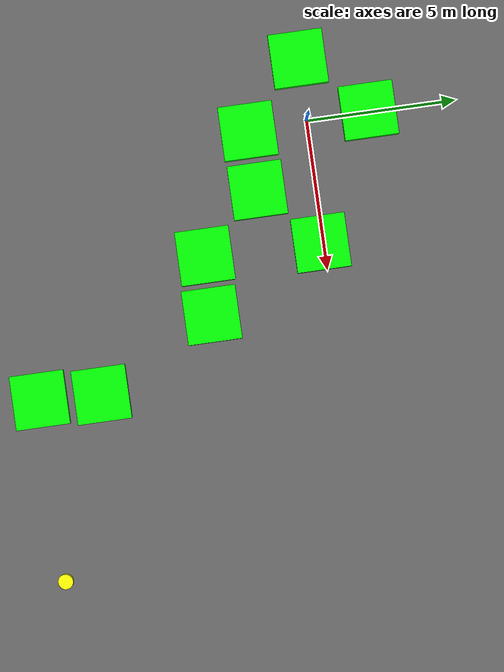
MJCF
<mujoco model="randommix_032_lvl0_standard_obs9_d3long_seed1085">
    <compiler angle="degree" coordinate="local" inertiafromgeom="true"/>
    <option integrator="RK4" timestep="0.01"/>

    <asset>
        <texture builtin="gradient" height="100" rgb1="0.6 0.8 1" rgb2="0 0 0" type="skybox" width="100"/>
        <texture name="floor_texture" type="2d" builtin="checker" width="100" height="100" rgb1="0 0 0" rgb2="0.8 0.8 0.8"/>
        <material name="MatPlane" reflectance="0.5" shininess="1" specular="1" texrepeat="10 10" texture="floor_texture"/>
    </asset>

    <!-- Excluding the contact between the agent and the goal, and the agent and the floor -->
    <contact>
        <exclude body1="agent" body2="goal"/>
        <exclude body1 = "agent" body2 = "floor"/>
    </contact>

    <extension>
        <plugin plugin = "mujoco.pid">
            <instance name = "pid1">
                <config key="kp" value="2"/>
                <config key="ki" value="0"/>
                <config key="kd" value="55"/>
            </instance>
        </plugin>
    </extension>

    <worldbody>
        <light cutoff="100" diffuse="1 1 1" dir="-0 0 -1.3" directional="true" exponent="1" pos="0 0 1.3" specular=".1 .1 .1"/>
        <body name="floor" pos="0 0 0">
            <geom name="floor_geom" type="plane" size="20 20 0.1" material="MatPlane"/>
        </body>

                <body name="goal" pos="0.0000 0.0000 0">
            <geom name="goal_geom" type="plane" size="0.5 0.5 1" pos="0 0 0" rgba="1 0 0 1"/>
        </body>

                <body name="agent" pos="14.0000 -10.0000 0.250">
            <joint name="j1" type="slide" axis ="1 0 0 "/>
            <joint name="j2" type="slide" axis ="0 1 0 "/>
            <geom name="agent_geom" type="cylinder" size="0.25 0.25 0.250" rgba="1 1 0 1"/>
        </body>

        <body name="obstacle1" pos="-0.0412 2.0727 0.250">  <geom name="obstacle1_geom" type="box" size="0.9000 0.9000 0.250" rgba="0 1 0 1"/></body>
        <body name="obstacle2" pos="-2.0558 0.0065 0.250">  <geom name="obstacle2_geom" type="box" size="0.9000 0.9000 0.250" rgba="0 1 0 1"/></body>
        <body name="obstacle3" pos="4.0812 -0.0963 0.250">  <geom name="obstacle3_geom" type="box" size="0.9000 0.9000 0.250" rgba="0 1 0 1"/></body>
        <body name="obstacle4" pos="0.0855 -1.9689 0.250">  <geom name="obstacle4_geom" type="box" size="0.9000 0.9000 0.250" rgba="0 1 0 1"/></body>
        <body name="obstacle5" pos="2.0645 -1.9314 0.250">  <geom name="obstacle5_geom" type="box" size="0.9000 0.9000 0.250" rgba="0 1 0 1"/></body>
        <body name="obstacle6" pos="3.9798 -3.9551 0.250">  <geom name="obstacle6_geom" type="box" size="0.9000 0.9000 0.250" rgba="0 1 0 1"/></body>
        <body name="obstacle7" pos="5.9465 -4.0057 0.250">  <geom name="obstacle7_geom" type="box" size="0.9000 0.9000 0.250" rgba="0 1 0 1"/></body>
        <body name="obstacle8" pos="8.0451 -7.9809 0.250">  <geom name="obstacle8_geom" type="box" size="0.9000 0.9000 0.250" rgba="0 1 0 1"/></body>
        <body name="obstacle9" pos="7.9440 -10.0251 0.250">  <geom name="obstacle9_geom" type="box" size="0.9000 0.9000 0.250" rgba="0 1 0 1"/></body>

    </worldbody>

    <sensor>
<!-- SENSORS -->

        <distance name="dist1" geom1="agent_geom" geom2="obstacle1_geom" cutoff="1.5"/>
        <distance name="dist2" geom1="agent_geom" geom2="obstacle2_geom" cutoff="1.5"/>
        <distance name="dist3" geom1="agent_geom" geom2="obstacle3_geom" cutoff="1.5"/>
        <distance name="dist4" geom1="agent_geom" geom2="obstacle4_geom" cutoff="1.5"/>
        <distance name="dist5" geom1="agent_geom" geom2="obstacle5_geom" cutoff="1.5"/>
        <distance name="dist6" geom1="agent_geom" geom2="obstacle6_geom" cutoff="1.5"/>
        <distance name="dist7" geom1="agent_geom" geom2="obstacle7_geom" cutoff="1.5"/>
        <distance name="dist8" geom1="agent_geom" geom2="obstacle8_geom" cutoff="1.5"/>
        <distance name="dist9" geom1="agent_geom" geom2="obstacle9_geom" cutoff="1.5"/>
</sensor>

    <actuator>
        <plugin joint="j1" plugin="mujoco.pid" instance="pid1" />
        <plugin joint="j2" plugin="mujoco.pid" instance="pid1"/>
    </actuator>
</mujoco>
